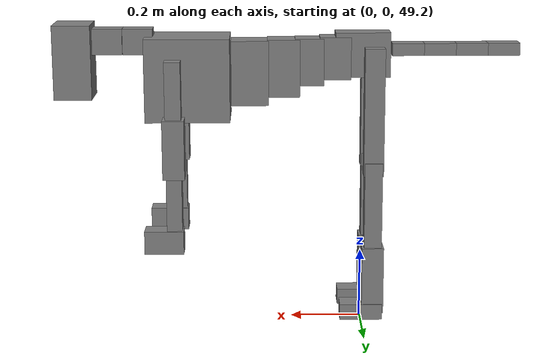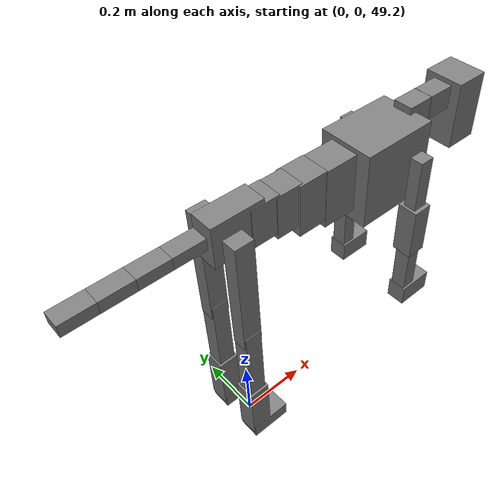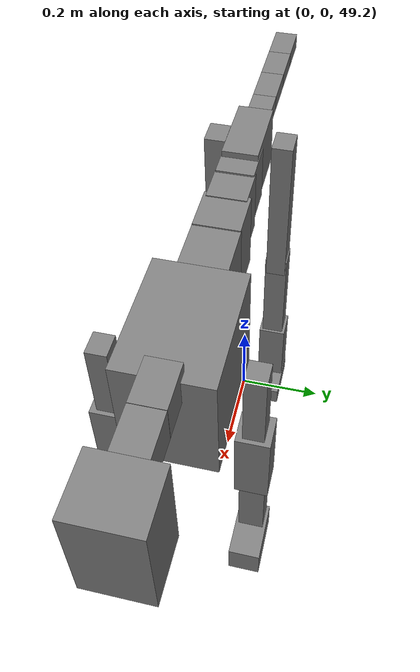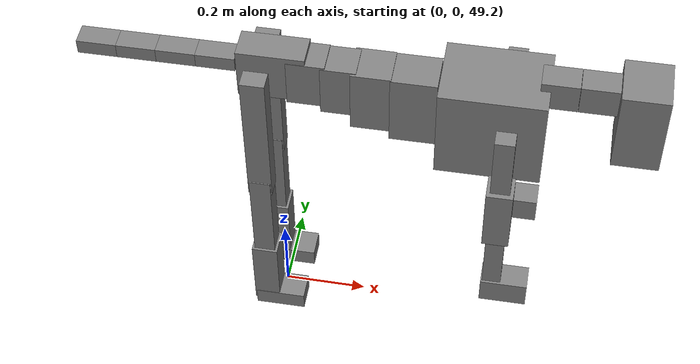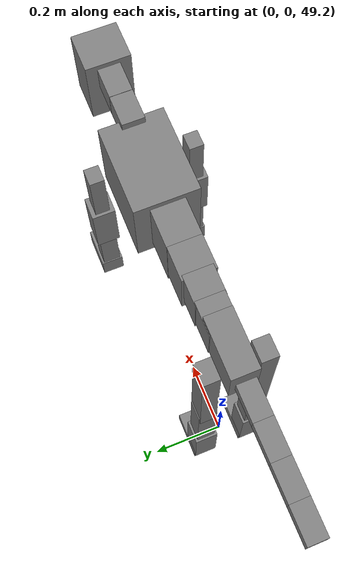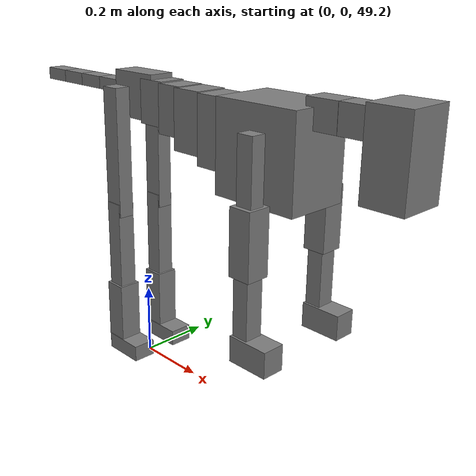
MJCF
<mujoco model="dog">

    <default>
        <joint armature="0.02" stiffness="1" damping="0.2" limited="true"/>
        <geom condim="3" friction="1 0.05 0.05" margin="0.01"/>
        <motor ctrllimited="true" ctrlrange="-1.0 1.0" forcelimited="true" gear="50"/>
    </default>

    <compiler inertiafromgeom="true" angle="radian"/>

    <option timestep="0.016" iterations="50" tolerance="1e-10" solver="Newton" jacobian="dense" cone="pyramidal"/>

    <size nconmax="20000" njmax="60000" nstack="5000000"/>
    <visual>
        <map force="0.1" zfar="30"/>
        <rgba haze="0.15 0.25 0.35 1"/>
        <quality shadowsize="2048"/>
        <global offwidth="800" offheight="800"/>
    </visual>

    <asset>
        <texture type="skybox" builtin="gradient" rgb1="0.3 0.5 0.7" rgb2="0 0 0" width="512" height="512"/>
        <texture name="texplane" type="2d" builtin="checker" rgb1=".2 .3 .4" rgb2=".1 0.15 0.2" width="512" height="512"
                 mark="cross" markrgb=".8 .8 .8"/>
        <texture name="texgeom" type="cube" builtin="flat" mark="cross" width="127" height="1278" rgb1="0.8 0.6 0.4"
                 rgb2="0.8 0.6 0.4" markrgb="1 1 1" random="0.01"/>

        <material name="matplane" reflectance="0.3" texture="texplane" texrepeat="1 1" texuniform="true"/>
        <material name="matgeom" texture="texgeom" texuniform="true" rgba="0.8 0.6 .4 1"/>
    </asset>

    <worldbody>
        <geom name="floor" pos="0 0 0" size="0 0 .25" type="plane" material="matplane" condim="3"/>

        <light directional="false" diffuse=".2 .2 .2" specular="0 0 0" pos="0 0 5" dir="0 0 -1" castshadow="false"/>
        <light mode="targetbodycom" target="torso" directional="false" diffuse=".8 .8 .8" specular="0.3 0.3 0.3"
               pos="0 0 4.0" dir="0 0 -1"/>

        <body name="root" pos="0 0 50">
            <freejoint name="root_1"/>
            <geom type="box" pos="0 0 -0.02" size="0.0774  0.0358  0.063" density="2030"/>

            <body name="spine1" pos="0.054 0 0">
                <joint name="spine1_y" axis="0 1 0" range="0 0.7" limited="true"/>
                <geom type="box" pos="0.02375 0 -0.03" size="0.04375  0.0375  0.05985" density="2030"/>

                <body name="spine2" pos="0.0612 0 0">
                    <joint name="spine2_y" axis="0 1 0" range="-0.15 0.15" limited="true"/>
                    <geom type="box" pos="0.03555  0  -0.04" size="0.04055  0.039  0.06615" density="2030"/>

                    <body name="spine3" pos="0.0730 0 0">
                        <joint name="spine3_y" axis="0 1 0" range="-0.15 0.15" limited="true"/>
                        <geom type="box" pos="0.03555  0  -0.057" size="0.04555  0.0445  0.081" density="2030"/>

                        <body name="spine4" pos="0.0780 0 0">
                            <joint name="spine4_y" axis="0 1 0" range="-0.15 0.15" limited="true"/>
                            <geom type="box" pos="0.05265  0  -0.07" size="0.05265  0.045  0.09135" density="2030"/>

                            <body name="torso" pos="0.1082 0 0">
                                <joint name="torso_y" axis="0 1 0" range="-0.15 0.15" limited="true"/>
                                <geom type="box" pos="0.11925  0  -0.085" size="0.11925  0.085  0.11745"
                                      density="2030"/>

                                <body name="neck1" pos="0.2160  0   0.0180">
                                    <joint name="neck1_y" axis="0 1 0" range="-1.2  -1" limited="true"/>
                                    <geom type="box" pos="0.0423  0  0" size="0.0423  0.03  0.036" density="2325"/>

                                    <body name="neck2" pos="0.0853  0  0">
                                        <joint name="neck2_y" axis="0 1 0" range="0.1  0" limited="true"/>
                                        <geom type="box" pos="0.0423  0  0" size="0.0423  0.03  0.036" density="2325"/>

                                        <body name="head" pos="0.0853  0  0">
                                            <joint name="head_y" axis="0 1 0" range="-0.3  -0.2" limited="true"/>
                                            <geom type="box" pos="0.0531  0  -0.055" size="0.0531  0.06  0.1044"
                                                  density="4030"/>

                                        </body>
                                    </body>
                                </body>

                                <body name="front_shoulder" pos="0.156  0   -0.0480">
                                    <joint name="front_shoulder_y" axis="0 1 0" range="-1 1.5" limited="true"/>
                                    <geom type="box" pos="0 0.13 -0.0674" size="0.0224  0.0192  0.0941" density="1158"/>
                                    <geom type="box" pos="0 -0.13 -0.0674" size="0.0224  0.0192  0.0941"
                                          density="1158"/>

                                    <body name="front_elbow" pos="0  0  -0.1348">
                                        <joint name="front_elbow_y" axis="0 1 0" range="-2 0" limited="true"/>
                                        <geom type="box" pos="0 0.13 -0.0832" size="0.0304  0.0311  0.0832"
                                              density="1081"/>
                                        <geom type="box" pos="0 -0.13 -0.0832" size="0.0304  0.0311  0.0832"
                                              density="1081"/>

                                        <body name="front_wrist" pos="0  0  -0.1664">
                                            <joint name="front_wrist_y" axis="0 1 0" range="-0.2 0" limited="true"/>
                                            <geom type="box" pos="0 0.13 -0.0812" size="0.0217  0.0241  0.0944"
                                                  density="1664"/>
                                            <geom type="box" pos="0 -0.13 -0.0812" size="0.0217  0.0241  0.0944"
                                                  density="1664"/>

                                            <body name="front_finger_end" pos="0  0  -0.1624">
                                                <joint name="front_finger_y" axis="0 1 0" range="-0.4 1"
                                                       limited="true"/>
                                                <geom type="box" pos="0.0299  0.13  -0.0179"
                                                      size="0.0548  0.0299  0.0329" density="1515"/>
                                                <geom type="box" pos="0.0299  -0.13  -0.0179"
                                                      size="0.0548  0.0299  0.0329" density="1515"/>

                                            </body>

                                        </body>
                                    </body>
                                </body>

                            </body>
                        </body>
                    </body>
                </body>
            </body>

            <body name="back_hip" pos="-0.03 0 -0.018">
                <joint name="back_hip_y" axis="0 1 0" range="-1.5 0.3" limited="true"/>
                <geom type="box" pos="0 0.07 -0.1584" size="0.0281  0.0220  0.1812" density="1154"/>
                <geom type="box" pos="0 -0.07 -0.1584" size="0.0281  0.0220  0.1812" density="1154"/>

                <body name="back_knee" pos="0  0  -0.3167">
                    <joint name="back_knee_y" axis="0 1 0" range="0 2.8" limited="true"/>
                    <geom type="box" pos="0 0.07 -0.1216" size="0.0251  0.0248  0.1371" density="1227"/>
                    <geom type="box" pos="0 -0.07 -0.1216" size="0.0251  0.0248  0.1371" density="1227"/>

                    <body name="back_ankle" pos="0  0  -0.2432">
                        <joint name="back_ankle_y" axis="0 1 0" range="-2.2 0" limited="true"/>
                        <geom type="box" pos="0 0.07 -0.0852" size="0.0312  0.0312  0.0965" density="1284"/>
                        <geom type="box" pos="0 -0.07 -0.0852" size="0.0312  0.0312  0.0965" density="1284"/>

                        <body name="back_toe_end" pos="0  0  -0.1704">
                            <joint name="back_toe_y" axis="0 1 0" range="-0.4 1" limited="true"/>
                            <geom type="box" pos="0.0329  0.07  -0.0077" size="0.0603  0.0329  0.0227" density="1515"/>
                            <geom type="box" pos="0.0329  -0.07  -0.0077" size="0.0603  0.0329  0.0227" density="1515"/>

                        </body>
                    </body>
                </body>
            </body>

            <body name="tail1" pos="-0.074 0 -0.006">
                <joint name="tail1_y" axis="0 1 0" range="-0.2 0.2" limited="true"/>
                <geom type="box" pos="-0.0536  0  0" size="0.045  0.025  0.0175" density="1587"/>

                <body name="tail2" pos="-0.09 0 0">
                    <joint name="tail2_y" axis="0 1 0" range="-0.2 0.2" limited="true"/>
                    <geom type="box" pos="-0.0536  0  0" size="0.045  0.025  0.0175" density="1587"/>

                    <body name="tail3" pos="-0.09 0 0">
                        <joint name="tail3_y" axis="0 1 0" range="-0.2 0.2" limited="true"/>
                        <geom type="box" pos="-0.0536  0  0" size="0.045  0.025  0.0175" density="1587"/>

                        <body name="tail4" pos="-0.09 0 0">
                            <joint name="tail4_y" axis="0 1 0" range="-0.2 0.2" limited="true"/>
                            <geom type="box" pos="-0.0536  0  0" size="0.045  0.025  0.0175" density="1587"/>

                        </body>
                    </body>
                </body>
            </body>
        </body>
    </worldbody>

    <actuator>
        <motor joint="spine1_y" forcerange="-150 150     "/>
        <motor joint="spine2_y" forcerange="-150 150     "/>
        <motor joint="spine3_y" forcerange="-150 150     "/>
        <motor joint="spine4_y" forcerange="-150 150     "/>
        <motor joint="torso_y" forcerange="-150 150     "/>
        <motor joint="neck1_y" forcerange="-100 100       "/>
        <motor joint="neck2_y" forcerange="-100 100       "/>
        <motor joint="head_y" forcerange="-150 150       "/>
        <motor joint="front_shoulder_y" forcerange="-112.31 115.39"/>
        <motor joint="front_elbow_y" forcerange="-197.27 128.93"/>
        <motor joint="front_wrist_y" forcerange="-91.46 101.21"/>
        <motor joint="front_finger_y" forcerange="-24.31 95.24"/>
        <motor joint="back_hip_y" forcerange="-225.31 268.25"/>
        <motor joint="back_knee_y" forcerange="-212.23 348.31"/>
        <motor joint="back_angle_y" forcerange="-184.79 215.01"/>
        <motor joint="back_toe_y" forcerange="-126.79 56.28"/>
        <motor joint="tail1_y" forcerange="-50 50     "/>
        <motor joint="tail2_y" forcerange="-50 50     "/>
        <motor joint="tail3_y" forcerange="-50 50     "/>
        <motor joint="tail4_y" forcerange="-50 50     "/>
    </actuator>
</mujoco>
